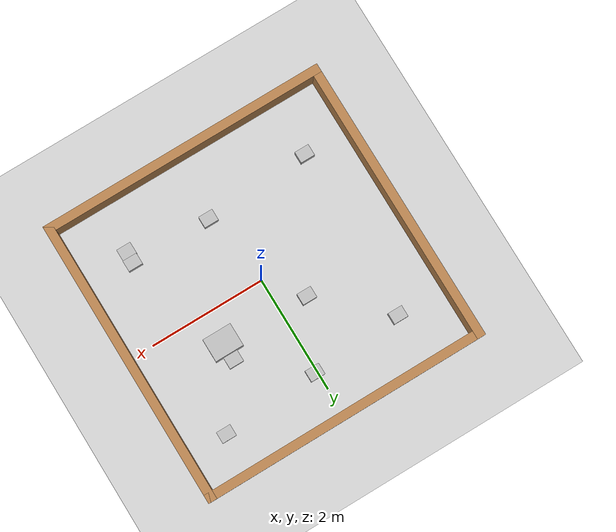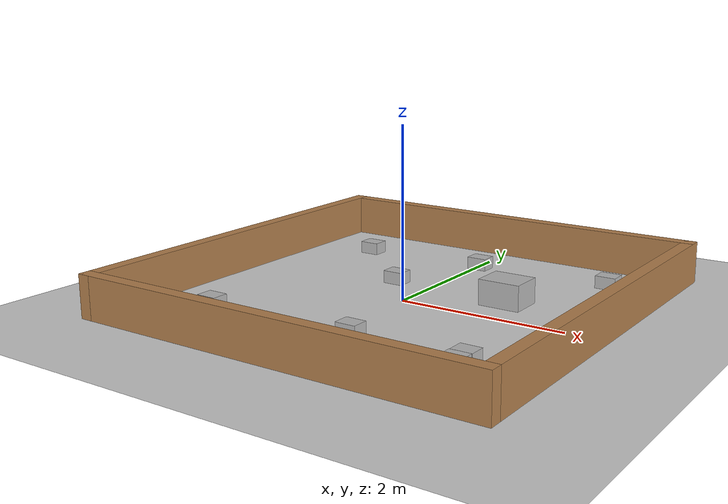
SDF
<sdf version="1.7">
 <world name="default">
  <light name="sun" type="directional">
   <pose>0 0 10 0 -0 0</pose>
   <diffuse>0.8 0.8 0.8 1</diffuse>
   <specular>0.2 0.2 0.2 1</specular>
   <attenuation>
    <range>1000</range>
    <constant>0.9</constant>
    <linear>0.01</linear>
    <quadratic>0.001</quadratic>
   </attenuation>
   <direction>-0.5 0.1 -0.9</direction>
   <spot><inner_angle>0</inner_angle><outer_angle>0</outer_angle><falloff>0</falloff></spot>
  </light>
  <model name="ground_plane">
   <static>1</static>
   <link name="link">
    <collision name="collision">
     <geometry><plane><normal>0 0 1</normal><size>100 100</size></plane></geometry>
     <surface><friction><ode><mu>100</mu><mu2>50</mu2></ode></friction></surface>
    </collision>
    <visual name="visual">
     <cast_shadows>0</cast_shadows>
     <geometry><plane><normal>0 0 1</normal><size>100 100</size></plane></geometry>
     <material>
      <script><uri>file://media/materials/scripts/gazebo.material</uri><name>Gazebo/Grey</name></script>
     </material>
    </visual>
   </link>
  </model>
  <gravity>0 0 -9.8</gravity>
  <magnetic_field>6e-06 2.3e-05 -4.2e-05</magnetic_field>
  <atmosphere type="adiabatic"/>
  <physics type="ode">
   <max_step_size>0.001</max_step_size>
   <real_time_factor>1</real_time_factor>
   <real_time_update_rate>1000</real_time_update_rate>
  </physics>
  <scene><ambient>0.4 0.4 0.4 1</ambient><background>0.7 0.7 0.7 1</background><shadows>1</shadows></scene>
  <audio><device>default</device></audio>
  <spherical_coordinates>
   <surface_model>EARTH_WGS84</surface_model>
   <latitude_deg>0</latitude_deg>
   <longitude_deg>0</longitude_deg>
   <elevation>0</elevation>
   <heading_deg>0</heading_deg>
  </spherical_coordinates>
  <model name="cardboard_box_smaller_0">
   <pose>-1.63079 -1.36261 0.074 0 -0 2e-06</pose>
   <link name="link">
    <inertial>
     <mass>0.5</mass>
     <inertia>
      <ixx>0.0104167</ixx>
      <ixy>0</ixy>
      <ixz>0</ixz>
      <iyy>0.0141667</iyy>
      <iyz>0</iyz>
      <izz>0.0170833</izz>
     </inertia>
    </inertial>
    <collision name="collision">
     <geometry><box><size>0.25 0.2 0.15</size></box></geometry>
     <surface>
      <friction><ode><mu>1</mu><mu2>1</mu2></ode></friction>
      <contact><ode><kp>1e+07</kp><kd>1</kd><min_depth>0.001</min_depth><max_vel>0.1</max_vel></ode></contact>
     </surface>
    </collision>
    <visual name="visual">
     <pose>0 0 -0.075 0 -0 0</pose>
     <geometry>
      <mesh>
       <uri>model://cardboard_box/meshes/cardboard_box.dae</uri>
       <scale>0.629659 0.503728 0.377796</scale>
      </mesh>
     </geometry>
    </visual>
   </link>
  </model>
  <model name="cardboard_box_smaller">
   <pose>1.5808 -1.48673 0.074 0 -0 0.00123</pose>
   <link name="link">
    <inertial>
     <mass>0.5</mass>
     <inertia>
      <ixx>0.0104167</ixx>
      <ixy>0</ixy>
      <ixz>0</ixz>
      <iyy>0.0141667</iyy>
      <iyz>0</iyz>
      <izz>0.0170833</izz>
     </inertia>
    </inertial>
    <collision name="collision">
     <geometry><box><size>0.25 0.2 0.15</size></box></geometry>
     <surface>
      <friction><ode><mu>1</mu><mu2>1</mu2></ode></friction>
      <contact><ode><kp>1e+07</kp><kd>1</kd><min_depth>0.001</min_depth><max_vel>0.1</max_vel></ode></contact>
     </surface>
    </collision>
    <visual name="visual">
     <pose>0 0 -0.075 0 -0 0</pose>
     <geometry>
      <mesh>
       <uri>model://cardboard_box/meshes/cardboard_box.dae</uri>
       <scale>0.629659 0.503728 0.377796</scale>
      </mesh>
     </geometry>
    </visual>
   </link>
  </model>
  <model name="cardboard_box_smaller_2">
   <pose>1.71886 1.77776 0.074 0 -0 3e-06</pose>
   <link name="link">
    <inertial>
     <mass>0.5</mass>
     <inertia>
      <ixx>0.0104167</ixx>
      <ixy>0</ixy>
      <ixz>0</ixz>
      <iyy>0.0141667</iyy>
      <iyz>0</iyz>
      <izz>0.0170833</izz>
     </inertia>
    </inertial>
    <collision name="collision">
     <geometry><box><size>0.25 0.2 0.15</size></box></geometry>
     <surface>
      <friction><ode><mu>1</mu><mu2>1</mu2></ode></friction>
      <contact><ode><kp>1e+07</kp><kd>1</kd><min_depth>0.001</min_depth><max_vel>0.1</max_vel></ode></contact>
     </surface>
    </collision>
    <visual name="visual">
     <pose>0 0 -0.075 0 -0 0</pose>
     <geometry>
      <mesh>
       <uri>model://cardboard_box/meshes/cardboard_box.dae</uri>
       <scale>0.629659 0.503728 0.377796</scale>
      </mesh>
     </geometry>
    </visual>
   </link>
  </model>
  <model name="cardboard_box_smaller_3">
   <pose>1.02242 0.844624 0.074 0 -0 0</pose>
   <link name="link">
    <inertial>
     <mass>0.5</mass>
     <inertia>
      <ixx>0.0104167</ixx>
      <ixy>0</ixy>
      <ixz>0</ixz>
      <iyy>0.0141667</iyy>
      <iyz>0</iyz>
      <izz>0.0170833</izz>
     </inertia>
    </inertial>
    <collision name="collision">
     <geometry><box><size>0.25 0.2 0.15</size></box></geometry>
     <surface>
      <friction><ode><mu>1</mu><mu2>1</mu2></ode></friction>
      <contact><ode><kp>1e+07</kp><kd>1</kd><min_depth>0.001</min_depth><max_vel>0.1</max_vel></ode></contact>
     </surface>
    </collision>
    <visual name="visual">
     <pose>0 0 -0.075 0 -0 0</pose>
     <geometry>
      <mesh>
       <uri>model://cardboard_box/meshes/cardboard_box.dae</uri>
       <scale>0.629659 0.503728 0.377796</scale>
      </mesh>
     </geometry>
    </visual>
   </link>
  </model>
  <model name="cardboard_box_smaller_4">
   <pose>1.58595 -1.291 0.074 -0 -0 -1.3e-05</pose>
   <link name="link">
    <inertial>
     <mass>0.5</mass>
     <inertia>
      <ixx>0.0104167</ixx>
      <ixy>0</ixy>
      <ixz>0</ixz>
      <iyy>0.0141667</iyy>
      <iyz>0</iyz>
      <izz>0.0170833</izz>
     </inertia>
    </inertial>
    <collision name="collision">
     <geometry><box><size>0.25 0.2 0.15</size></box></geometry>
     <surface>
      <friction><ode><mu>1</mu><mu2>1</mu2></ode></friction>
      <contact><ode><kp>1e+07</kp><kd>1</kd><min_depth>0.001</min_depth><max_vel>0.1</max_vel></ode></contact>
     </surface>
    </collision>
    <visual name="visual">
     <pose>0 0 -0.075 0 -0 0</pose>
     <geometry>
      <mesh>
       <uri>model://cardboard_box/meshes/cardboard_box.dae</uri>
       <scale>0.629659 0.503728 0.377796</scale>
      </mesh>
     </geometry>
    </visual>
   </link>
  </model>
  <model name="cardboard_box_smaller_5">
   <pose>-0.479644 0.583093 0.074 0 -0 0</pose>
   <link name="link">
    <inertial>
     <mass>0.5</mass>
     <inertia>
      <ixx>0.0104167</ixx>
      <ixy>0</ixy>
      <ixz>0</ixz>
      <iyy>0.0141667</iyy>
      <iyz>0</iyz>
      <izz>0.0170833</izz>
     </inertia>
    </inertial>
    <collision name="collision">
     <geometry><box><size>0.25 0.2 0.15</size></box></geometry>
     <surface>
      <friction><ode><mu>1</mu><mu2>1</mu2></ode></friction>
      <contact><ode><kp>1e+07</kp><kd>1</kd><min_depth>0.001</min_depth><max_vel>0.1</max_vel></ode></contact>
     </surface>
    </collision>
    <visual name="visual">
     <pose>0 0 -0.075 0 -0 0</pose>
     <geometry>
      <mesh>
       <uri>model://cardboard_box/meshes/cardboard_box.dae</uri>
       <scale>0.629659 0.503728 0.377796</scale>
      </mesh>
     </geometry>
    </visual>
   </link>
  </model>
  <model name="turtlebot3_square">
   <pose>-0.00093 0.060476 0 0 -0 0</pose>
   <link name="Wall_1">
    <collision name="Wall_1_Collision">
     <geometry><box><size>5 0.15 0.5</size></box></geometry>
     <pose>0 0 0.25 0 -0 0</pose>
    </collision>
    <visual name="Wall_1_Visual">
     <pose>0 0 0.25 0 -0 0</pose>
     <geometry><box><size>5 0.15 0.5</size></box></geometry>
     <material>
      <script><uri>file://media/materials/scripts/gazebo.material</uri><name>Gazebo/Wood</name></script>
      <ambient>1 1 1 1</ambient>
     </material>
    </visual>
    <pose>-2.425 0 0 0 -0 1.5708</pose>
   </link>
   <link name="Wall_2">
    <collision name="Wall_2_Collision">
     <geometry><box><size>5 0.15 0.5</size></box></geometry>
     <pose>0 0 0.25 0 -0 0</pose>
    </collision>
    <visual name="Wall_2_Visual">
     <pose>0 0 0.25 0 -0 0</pose>
     <geometry><box><size>5 0.15 0.5</size></box></geometry>
     <material>
      <script><uri>file://media/materials/scripts/gazebo.material</uri><name>Gazebo/Wood</name></script>
      <ambient>1 1 1 1</ambient>
     </material>
    </visual>
    <pose>0 2.425 0 0 -0 0</pose>
   </link>
   <link name="Wall_3">
    <collision name="Wall_3_Collision">
     <geometry><box><size>5 0.15 0.5</size></box></geometry>
     <pose>0 0 0.25 0 -0 0</pose>
    </collision>
    <visual name="Wall_3_Visual">
     <pose>0 0 0.25 0 -0 0</pose>
     <geometry><box><size>5 0.15 0.5</size></box></geometry>
     <material>
      <script><uri>file://media/materials/scripts/gazebo.material</uri><name>Gazebo/Wood</name></script>
      <ambient>1 1 1 1</ambient>
     </material>
    </visual>
    <pose>2.425 0 0 0 0 -1.5708</pose>
   </link>
   <link name="Wall_4">
    <collision name="Wall_4_Collision">
     <geometry><box><size>5 0.15 0.5</size></box></geometry>
     <pose>0 0 0.25 0 -0 0</pose>
    </collision>
    <visual name="Wall_4_Visual">
     <pose>0 0 0.25 0 -0 0</pose>
     <geometry><box><size>5 0.15 0.5</size></box></geometry>
     <material>
      <script><uri>file://media/materials/scripts/gazebo.material</uri><name>Gazebo/Wood</name></script>
      <ambient>1 1 1 1</ambient>
     </material>
    </visual>
    <pose>0 -2.425 0 0 -0 3.14159</pose>
   </link>
   <static>1</static>
  </model>
  <model name="cardboard_box">
   <pose>1.02883 0.542919 0.15 0 -0 0</pose>
   <link name="link">
    <inertial>
     <mass>2</mass>
     <inertia>
      <ixx>0.0416667</ixx>
      <ixy>0</ixy>
      <ixz>0</ixz>
      <iyy>0.0566667</iyy>
      <iyz>0</iyz>
      <izz>0.0683333</izz>
     </inertia>
    </inertial>
    <collision name="collision">
     <geometry><box><size>0.5 0.4 0.3</size></box></geometry>
     <surface>
      <friction><ode><mu>1</mu><mu2>1</mu2></ode></friction>
      <contact><ode><kp>1e+07</kp><kd>1</kd><min_depth>0.001</min_depth><max_vel>0.1</max_vel></ode></contact>
     </surface>
    </collision>
    <visual name="visual">
     <pose>0 0 -0.15 0 -0 0</pose>
     <geometry>
      <mesh><uri>model://cardboard_box/meshes/cardboard_box.dae</uri><scale>1.25932 1.00745 0.755591</scale></mesh>
     </geometry>
    </visual>
   </link>
  </model>
  <model name="cardboard_box_smaller_1">
   <pose>-1.54222 1.58399 0.075 0 -0 0</pose>
   <link name="link">
    <inertial>
     <mass>0.5</mass>
     <inertia>
      <ixx>0.0104167</ixx>
      <ixy>0</ixy>
      <ixz>0</ixz>
      <iyy>0.0141667</iyy>
      <iyz>0</iyz>
      <izz>0.0170833</izz>
     </inertia>
    </inertial>
    <collision name="collision">
     <geometry><box><size>0.25 0.2 0.15</size></box></geometry>
     <surface>
      <friction><ode><mu>1</mu><mu2>1</mu2></ode></friction>
      <contact><ode><kp>1e+07</kp><kd>1</kd><min_depth>0.001</min_depth><max_vel>0.1</max_vel></ode></contact>
     </surface>
    </collision>
    <visual name="visual">
     <pose>0 0 -0.075 0 -0 0</pose>
     <geometry>
      <mesh>
       <uri>model://cardboard_box/meshes/cardboard_box.dae</uri>
       <scale>0.629659 0.503728 0.377796</scale>
      </mesh>
     </geometry>
    </visual>
   </link>
  </model>
  <model name="cardboard_box_smaller_6">
   <pose>0.207812 -1.26591 0.075 0 -0 0</pose>
   <link name="link">
    <inertial>
     <mass>0.5</mass>
     <inertia>
      <ixx>0.0104167</ixx>
      <ixy>0</ixy>
      <ixz>0</ixz>
      <iyy>0.0141667</iyy>
      <iyz>0</iyz>
      <izz>0.0170833</izz>
     </inertia>
    </inertial>
    <collision name="collision">
     <geometry><box><size>0.25 0.2 0.15</size></box></geometry>
     <surface>
      <friction><ode><mu>1</mu><mu2>1</mu2></ode></friction>
      <contact><ode><kp>1e+07</kp><kd>1</kd><min_depth>0.001</min_depth><max_vel>0.1</max_vel></ode></contact>
     </surface>
    </collision>
    <visual name="visual">
     <pose>0 0 -0.075 0 -0 0</pose>
     <geometry>
      <mesh>
       <uri>model://cardboard_box/meshes/cardboard_box.dae</uri>
       <scale>0.629659 0.503728 0.377796</scale>
      </mesh>
     </geometry>
    </visual>
   </link>
  </model>
  <model name="cardboard_box_smaller_7">
   <pose>0.041545 1.67898 0.075 0 -0 0</pose>
   <link name="link">
    <inertial>
     <mass>0.5</mass>
     <inertia>
      <ixx>0.0104167</ixx>
      <ixy>0</ixy>
      <ixz>0</ixz>
      <iyy>0.0141667</iyy>
      <iyz>0</iyz>
      <izz>0.0170833</izz>
     </inertia>
    </inertial>
    <collision name="collision">
     <geometry><box><size>0.25 0.2 0.15</size></box></geometry>
     <surface>
      <friction><ode><mu>1</mu><mu2>1</mu2></ode></friction>
      <contact><ode><kp>1e+07</kp><kd>1</kd><min_depth>0.001</min_depth><max_vel>0.1</max_vel></ode></contact>
     </surface>
    </collision>
    <visual name="visual">
     <pose>0 0 -0.075 0 -0 0</pose>
     <geometry>
      <mesh>
       <uri>model://cardboard_box/meshes/cardboard_box.dae</uri>
       <scale>0.629659 0.503728 0.377796</scale>
      </mesh>
     </geometry>
    </visual>
   </link>
  </model>
 </world>
</sdf>
